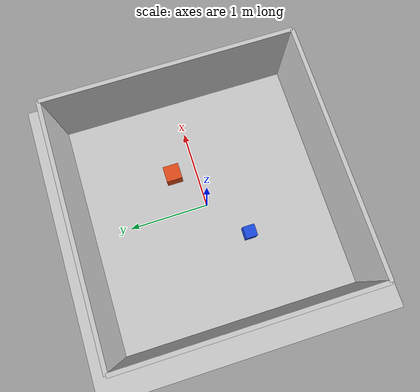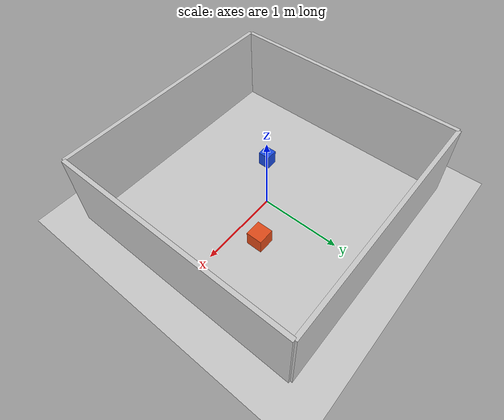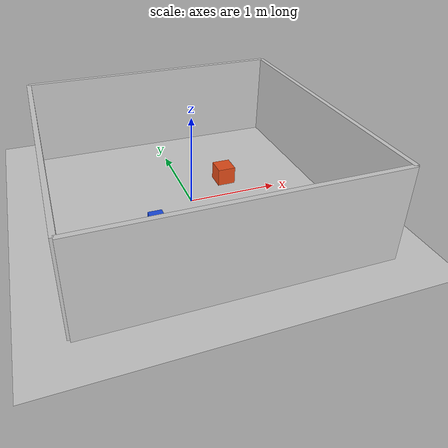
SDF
<?xml version="1.0" ?>
<sdf version="1.6">
  <world name="indoor_room">

    <include>
      <uri>model://ground_plane</uri>
    </include>

    <include>
      <uri>model://sun</uri>
    </include>

    <!-- Physics tuned for a small lightweight robot -->
    <physics type="ode">
      <max_step_size>0.001</max_step_size>
      <real_time_factor>1</real_time_factor>
      <real_time_update_rate>1000</real_time_update_rate>
      <ode>
        <solver>
          <type>quick</type>
          <iters>150</iters>
          <sor>1.400000</sor>
        </solver>
      </ode>
    </physics>

    <!-- Room walls (3m x 3m) -->
    <!-- North wall -->
    <model name="wall_north">
      <static>true</static>
      <pose>0 1.5 0.5 0 0 0</pose>
      <link name="link">
        <collision name="col"><geometry><box><size>3.0 0.05 1.0</size></box></geometry></collision>
        <visual name="vis">
          <geometry><box><size>3.0 0.05 1.0</size></box></geometry>
          <material><ambient>0.8 0.8 0.8 1</ambient></material>
        </visual>
      </link>
    </model>

    <!-- South wall -->
    <model name="wall_south">
      <static>true</static>
      <pose>0 -1.5 0.5 0 0 0</pose>
      <link name="link">
        <collision name="col"><geometry><box><size>3.0 0.05 1.0</size></box></geometry></collision>
        <visual name="vis">
          <geometry><box><size>3.0 0.05 1.0</size></box></geometry>
          <material><ambient>0.8 0.8 0.8 1</ambient></material>
        </visual>
      </link>
    </model>

    <!-- East wall -->
    <model name="wall_east">
      <static>true</static>
      <pose>1.5 0 0.5 0 0 0</pose>
      <link name="link">
        <collision name="col"><geometry><box><size>0.05 3.0 1.0</size></box></geometry></collision>
        <visual name="vis">
          <geometry><box><size>0.05 3.0 1.0</size></box></geometry>
          <material><ambient>0.8 0.8 0.8 1</ambient></material>
        </visual>
      </link>
    </model>

    <!-- West wall -->
    <model name="wall_west">
      <static>true</static>
      <pose>-1.5 0 0.5 0 0 0</pose>
      <link name="link">
        <collision name="col"><geometry><box><size>0.05 3.0 1.0</size></box></geometry></collision>
        <visual name="vis">
          <geometry><box><size>0.05 3.0 1.0</size></box></geometry>
          <material><ambient>0.8 0.8 0.8 1</ambient></material>
        </visual>
      </link>
    </model>

    <!-- A couple of obstacles for the juniors to navigate around -->
    <model name="obstacle_box_1">
      <static>true</static>
      <pose>0.5 0.3 0.1 0 0 0</pose>
      <link name="link">
        <collision name="col"><geometry><box><size>0.2 0.2 0.2</size></box></geometry></collision>
        <visual name="vis">
          <geometry><box><size>0.2 0.2 0.2</size></box></geometry>
          <material><ambient>0.9 0.3 0.1 1</ambient></material>
        </visual>
      </link>
    </model>

    <model name="obstacle_box_2">
      <static>true</static>
      <pose>-0.5 -0.4 0.1 0 0 0</pose>
      <link name="link">
        <collision name="col"><geometry><box><size>0.15 0.15 0.2</size></box></geometry></collision>
        <visual name="vis">
          <geometry><box><size>0.15 0.15 0.2</size></box></geometry>
          <material><ambient>0.1 0.3 0.9 1</ambient></material>
        </visual>
      </link>
    </model>

  </world>
</sdf>
